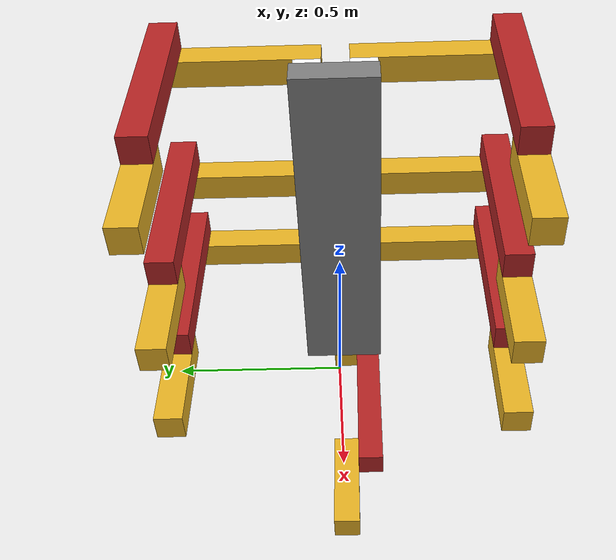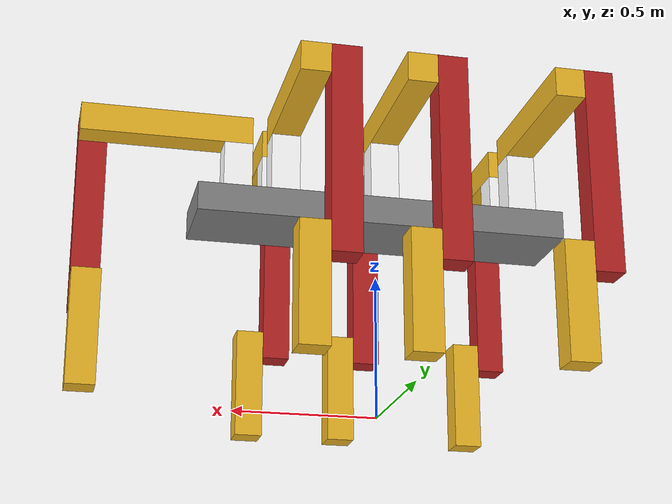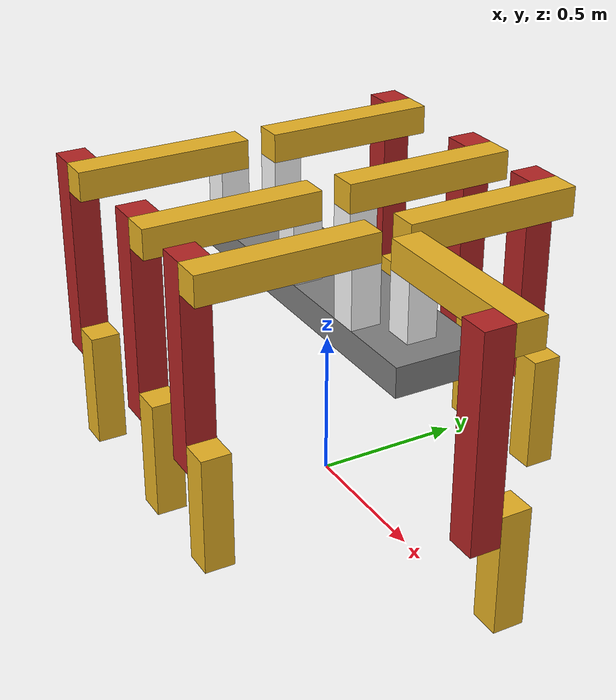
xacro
<?xml version="1.0"?>
<robot xmlns:xacro="http://www.ros.org/wiki/xacro" name="v0">

	<xacro:macro name="mybox" params="sizeX sizeY sizeZ color *origin">
		<visual>
			<geometry>
				<box size="${sizeX} ${sizeY} ${sizeZ}" />
			</geometry>
			<material name="${color}" />
			<xacro:insert_block name="origin" />
		</visual>
		<collision>
			<geometry>
				<box size="${sizeX} ${sizeY} ${sizeZ}" />
			</geometry>
			<xacro:insert_block name="origin" />
        </collision>
		<inertial>
			<xacro:property name="weight" value="${sizeX * sizeY * sizeZ * 160 * 16}"/>
			<mass value="${weight}"/>
			<inertia
				ixx="${1.0/12.0 * weight * (sizeZ * sizeZ + sizeY * sizeY)}"
				iyy="${1.0/12.0 * weight * (sizeZ * sizeZ + sizeX * sizeX)}"
				izz="${1.0/12.0 * weight * (sizeY * sizeY + sizeX * sizeX)}"
				ixy="0.0" ixz="0.0" iyz="0.0"/>
		</inertial>
	</xacro:macro>

	<xacro:macro name="leg" params="name reflect *origin">
		<link name="${name}_segment_1">
			<xacro:mybox sizeX="0.1" sizeY="0.1" sizeZ="0.2" color="white">
				<origin xyz="0 0 0.1" rpy="0 0 0" />
			</xacro:mybox>
		</link>

		<joint name="${name}_base_to_joint_1" type="fixed">
			<parent link="body" />
			<child link="${name}_segment_1" />
			<xacro:insert_block name="origin" />
		</joint>

		<link name="${name}_segment_2_HIP">
			<xacro:mybox sizeX="0.1" sizeY="0.6" sizeZ="0.1" color="yellow">
				<origin xyz="0 ${reflect*0.25} 0" rpy="0 0 0" />
			</xacro:mybox>
		</link>

		<joint name="${name}_joint_1_to_2" type="revolute">
			<parent link="${name}_segment_1" />
			<child link="${name}_segment_2_HIP" />
			<origin xyz="0 0 0.25" rpy="0 0 0" />
			<axis xyz="0.0 0.0 1.0" />
			<limit effort="2048" lower="-1.2" upper="1.2" velocity="20"/>
		</joint>

		<link name="${name}_segment_3_THIGH">
			<xacro:mybox sizeX="0.1" sizeY="0.1" sizeZ="0.7" color="red">
				<origin xyz="0 0 -0.3" rpy="0 0 0" />
			</xacro:mybox>
		</link>

		<joint name="${name}_joint_2_to_3" type="revolute">
			<parent link="${name}_segment_2_HIP" />
			<child link="${name}_segment_3_THIGH" />
			<origin xyz="-0.1 ${reflect*0.5} 0" rpy="0 0 0" />
			<axis xyz="1.0 0.0 0.0" />
			<xacro:if value="${reflect == -1}">
				<limit effort="2048" lower="-0.75" upper="0.2" velocity="20"/>
			</xacro:if>
			<xacro:unless value="${reflect == -1}">
				<limit effort="2048" lower="-0.2" upper="0.75" velocity="20"/>
			</xacro:unless>
		</joint>

		<link name="${name}_segment_4_FOOT">
			<xacro:mybox sizeX="0.1" sizeY="0.1" sizeZ="0.4" color="yellow">
				<origin xyz="0 0 -0.2" rpy="0 0 0" />
			</xacro:mybox>
		</link>

		<joint name="${name}_joint_3_to_4_FOOT" type="revolute">
			<parent link="${name}_segment_3_THIGH" />
			<child link="${name}_segment_4_FOOT" />
			<origin xyz="0.1 0 -0.55" rpy="0 0 0" />
			<axis xyz="1.0 0.0 0.0" />
			<xacro:if value="${reflect == -1}">
				<limit effort="2048" lower="-0.5" upper="0.2" velocity="20"/>
			</xacro:if>
			<xacro:unless value="${reflect == -1}">
				<limit effort="2048" lower="-0.2" upper="0.5" velocity="20"/>
			</xacro:unless>
		</joint>
	</xacro:macro>

	<material name="grey">
		<color rgba="0.5 0.5 0.5 1" />
	</material>

	<material name="white">
		<color rgba="1 1 1 1" />
	</material>

	<material name="yellow">
		<color rgba="0.91 0.7 0.14 1" />
	</material>

	<material name="red">
		<color rgba="0.71 0.14 0.14 1" />
	</material>

	<link name="body">
		<xacro:mybox sizeX="1.3" sizeY="0.3" sizeZ="0.1" color="grey">
			<origin xyz="0 0 0.7" rpy="0 0 0" />
		</xacro:mybox>
	</link>

	<xacro:leg name="l1" reflect="1">
		<origin xyz="0.35 0.1 .75" rpy="0 0 0" />
	</xacro:leg>

	<xacro:leg name="l2" reflect="1">
		<origin xyz="0 0.1 0.75" rpy="0 0 0" />
	</xacro:leg>

	<xacro:leg name="l3" reflect="1">
		<origin xyz="-0.5 0.1 .75" rpy="0 0 0" />
	</xacro:leg>

	<xacro:leg name="r1" reflect="-1">
		<origin xyz="0.35 -0.1 .75" rpy="0 0 0" />
	</xacro:leg>

	<xacro:leg name="r2" reflect="-1">
		<origin xyz="0 -0.1 0.75" rpy="0 0 0" />
	</xacro:leg>

	<xacro:leg name="r3" reflect="-1">
		<origin xyz="-0.5 -0.1 .75" rpy="0 0 0" />
	</xacro:leg>

	<xacro:leg name="r4" reflect="-1">
		<origin xyz="0.5 -0. .75" rpy="0 0 1.57" />
	</xacro:leg>

</robot>
